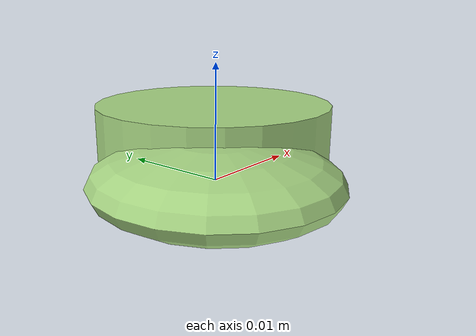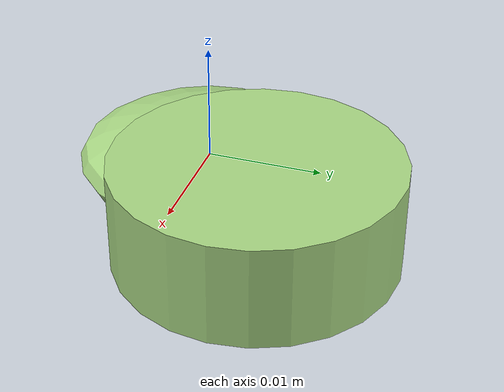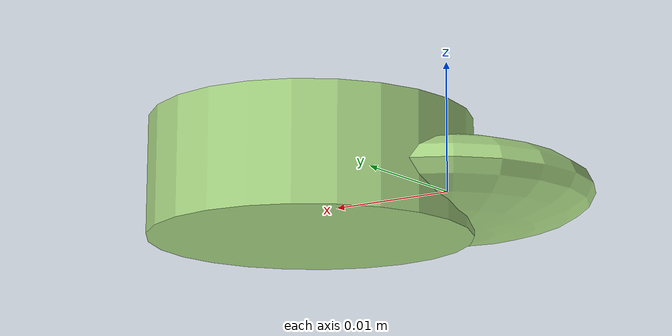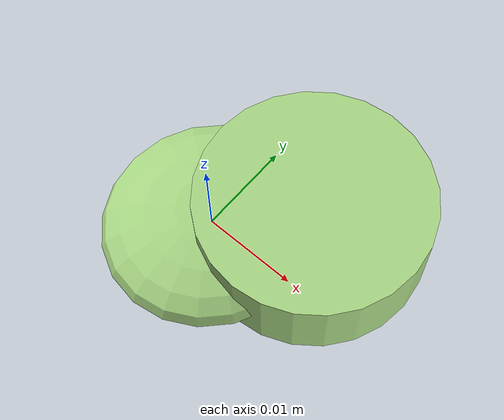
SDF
<?xml version="1.0" ?>
<!-- |    This document was autogenerated by xmacro from data/veggie_template/veggie_base.sdf.xacro  | -->
<!-- |    EDITING THIS FILE BY HAND IS NOT RECOMMENDED                                               | -->
<sdf version="1.8">
	<!-- Parameters -->
	<!-- Base -->
	<!-- Joint 0 -->
	<!-- Link 1 -->
	<!-- Joint 1 -->
	<!-- Link 2 -->
	<!-- Primitives -->
	<!-- All dimensions are half -->
	<!-- Object -->
	<model name="veggie">
		<!-- link0 -->
		<link name="link0">
			<inertial>
				<mass>0.0017882810462176396</mass>
				<inertia>
					<ixx>5.008218069539295e-08</ixx>
					<ixy>0</ixy>
					<ixz>0</ixz>
					<iyy>4.6977913892076374e-08</iyy>
					<iyz>0</iyz>
					<izz>8.854023513407055e-08</izz>
				</inertia>
			</inertial>
			<visual name="link0_visual">
				<pose>0 0 0 0 0 0</pose>
				<geometry>
					<ellipsoid>
						<radii>0.010928800309098022 0.011318928725631193 0.003451185736408422</radii>
					</ellipsoid>
				</geometry>
				<material>
					<ambient>0.659 0.839 0.514 1</ambient>
					<diffuse>0.659 0.839 0.514 1</diffuse>
					<specular>0 0 0 0</specular>
					<emissive>0 0 0 1</emissive>
				</material>
			</visual>
			<collision name="link0_collision">
				<pose>0 0 0 0 0 0 </pose>
				<geometry>
					<ellipsoid>
						<radii>0.010928800309098022 0.011318928725631193 0.003451185736408422</radii>
					</ellipsoid>
				</geometry>
			</collision>
		</link>
		<!-- link1 -->
		<joint name="joint0" type="fixed">
			<pose relative_to="link0">0.007603493331480856 0.006733225996775276 0.0006168760589314737 0.0 0.0 0.0</pose>
			<parent>link0</parent>
			<child>link1</child>
		</joint>
		<link name="link1">
			<pose relative_to="joint0">0 0 0 0 0 0</pose>
			<inertial>
				<mass>0.00398944529080263</mass>
				<inertia>
					<ixx>1.695846608422065e-07</ixx>
					<ixy>0</ixy>
					<ixz>0</ixz>
					<iyy>1.695846608422065e-07</iyy>
					<iyz>0</iyz>
					<izz>2.8758511740468017e-07</izz>
				</inertia>
			</inertial>
			<visual name="link1_visual">
				<pose>0 0 0 0 0 0</pose>
				<geometry>
					<cylinder>
						<radius>0.01200720553185481</radius>
						<length>0.008808008724441485</length>
					</cylinder>
				</geometry>
				<material>
					<ambient>0.659 0.839 0.514 1</ambient>
					<diffuse>0.659 0.839 0.514 1</diffuse>
					<specular>0 0 0 0</specular>
					<emissive>0 0 0 1</emissive>
				</material>
			</visual>
			<collision name="link1_collision">
				<pose>0 0 0 0 0 0 </pose>
				<geometry>
					<cylinder>
						<radius>0.01200720553185481</radius>
						<length>0.008808008724441485</length>
					</cylinder>
				</geometry>
			</collision>
		</link>
		<!-- link2 -->
	</model>
</sdf>
